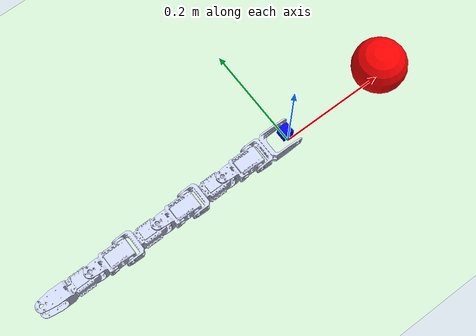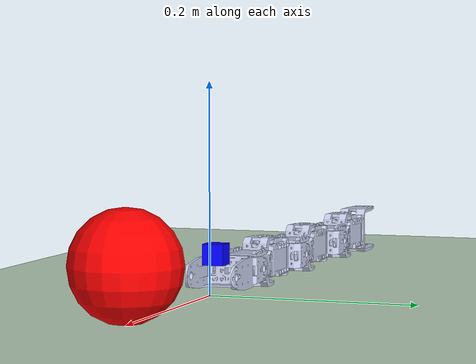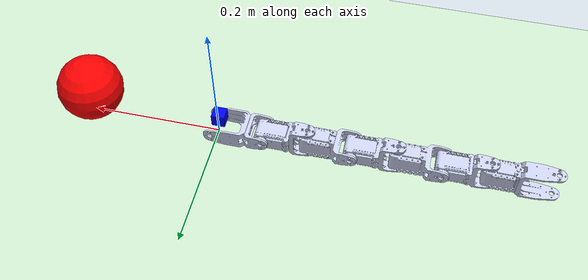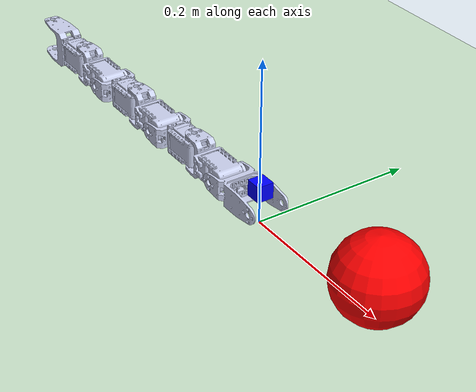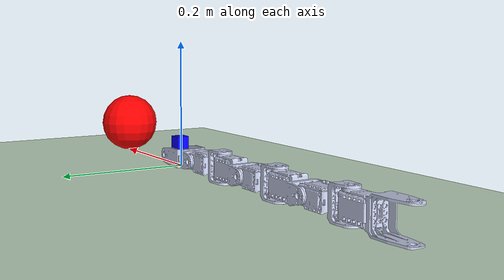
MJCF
<mujoco model="6Modules-Snake">
    <compiler angle="degree" coordinate="local" inertiafromgeom="true"/>
    <option integrator="Euler" timestep="0.0125">
        <flag energy="enable" clampctrl="enable"/>
    </option>
    <size nconmax="1000"/>

    <!--  ================= old 6Modules-Snake.xml ================= /-->

    <!--  ================= defaults ================= /-->
    <default>
        <!-- for power effizient experiment-->
        <geom conaffinity="0" condim="3" friction="1 0.05 0.00001" margin="0.01" density="600" />
        <joint armature='0.001' damping="0" frictionloss="0.001" />
        <!-- armature='1' damping="1" -->

        <position ctrllimited="true" ctrlrange="-1.5 1.5" forcelimited="true" forcerange="-10.0 10.0" kp="7" gear="1"/>

    </default>

    <asset>
        <mesh name="Tail" file="Tail.STL" />
        <mesh name="Module_1" file="Module_1.STL" />
        <mesh name="Module_2" file="Module_2.STL" />
        <mesh name="Module_3" file="Module_3.STL" />
        <mesh name="Module_4" file="Module_4.STL" />
        <mesh name="Module_5" file="Module_5.STL" />
        <mesh name="Head" file="Head.STL" />

        <!-- My Textures -->
        <!--  ================= Target Mesh ================= /-->
        <texture builtin="gradient" height="100" rgb1="1 1 1" rgb2="0 0 0" type="skybox" width="100"/>
        <texture builtin="flat" height="1278" mark="cross" markrgb="1 1 1" name="texgeom" random="0.01"
                 rgb1="0.8 0.6 0.4" rgb2="0.8 0.6 0.4" type="cube" width="127"/>
        <texture builtin="checker" height="100" name="texplane" rgb1="0 0 0" rgb2="0.8 0.8 0.8" type="2d" width="100"/>
        <material name="MatPlane" reflectance="0.5" shininess="1" specular="1" texrepeat="80 80" texture="texplane"/>
        <!-- 80 80 is one le -->
        <material name="geom" texture="texgeom" texuniform="true"/>

        <material name="MatTarget" rgba="1 0 0 1" reflectance="0.05" shininess="0.1" specular="0.1"/>
    </asset>

    <!-- Add manually-->
    <visual>
        <map znear="0.0625"  />
        <quality shadowsize="4096"/>

    </visual>

    <worldbody>
        <light cutoff="100" diffuse="1 1 1" dir="-0 0 -1.3" directional="true" exponent="1" pos="0 0 1.3"
               specular=".1 .1 .1"/>
        <geom name="floor" size="80 80 10" material="MatPlane" conaffinity="1" condim="3" pos="0 0 -0.025" rgba="0.8 0.9 0.8 0.71" type="plane"/>

        <!--  ================= Sun ================= /-->

        <!--  ================= Target ================= /-->
        <body name="target_ball" pos="0.2 0.0 0.05">
            <joint axis="1 0 0" name="target_slider_x" type="slide"/>
            <joint axis="0 1 0" name="target_slider_y" type="slide"/>
            <geom name="target_ball_geom" type="sphere" pos="0 0 0" size="0.05" material="MatTarget"/>
            <camera name="track_ball" mode="trackcom" pos="0 -4 6" euler="30 0 0"/>
            <camera name="track_ball2" mode="targetbodycom" pos="0 0 1" zaxis="0 0 90" />
        </body>

        <!--  ================= Add manually ================= /-->
        <body name="Snake-bodys" pos="-0.45 -0.01  0">

        <!--  ================= Add manually ================= /-->

            <!--  ====== copy from "6Modules-Feb17-v2-edited.xml" ====== -->
            <geom type="mesh" rgba="0.79216 0.81961 0.93333 1" mesh="Tail" />
            <body name="Module_1" pos="0.0398 0.0145 0.043">
                <inertial pos="0.15843 0.00036206 -0.023661" quat="0.268962 0.65397 0.269933 0.653543" mass="0.34605" diaginertia="0.00569944 0.00569937 7.43933e-05" />
                <joint name="Joint_1" pos="0 0 0" axis="0 0 1" limited="true" range="-90 90" damping="5" frictionloss="20" />
                <geom type="mesh" rgba="0.79216 0.81961 0.93333 1" mesh="Module_1" />
                <body name="Module_2" pos="0.0675 0 -0.024">
                    <inertial pos="0.090932 0.00036206 0.00033889" quat="0.268962 0.65397 0.269933 0.653543" mass="0.34605" diaginertia="0.00569944 0.00569937 7.43933e-05" />
                    <joint name="Joint_2" pos="0 0 0" axis="0 -1 0" limited="true" range="-9 9" damping="5" frictionloss="20" />
                    <geom type="mesh" rgba="0.79216 0.81961 0.93333 1" mesh="Module_2" />
                    <body name="Module_3" pos="0.0675 0 0">
                        <inertial pos="0.023432 0.00036206 0.00033889" quat="0.268962 0.65397 0.269933 0.653543" mass="0.34605" diaginertia="0.00569944 0.00569937 7.43933e-05" />
                        <joint name="Joint_3" pos="0 0 0" axis="0 0 1" limited="true" range="-90 90" damping="5" frictionloss="20" />
                        <geom type="mesh" rgba="0.79216 0.81961 0.93333 1" mesh="Module_3" />
                        <body name="Module_4" pos="0.0675 0 0">
                            <inertial pos="-0.044068 0.00036206 0.00033889" quat="0.268962 0.65397 0.269933 0.653543" mass="0.34605" diaginertia="0.00569944 0.00569937 7.43933e-05" />
                            <joint name="Joint_4" pos="0 0 0" axis="0 -1 0" limited="true" range="-9 9" damping="5" frictionloss="20" />
                            <geom type="mesh" rgba="0.79216 0.81961 0.93333 1" mesh="Module_4" />
                            <body name="Module_5" pos="0.0675 0 0">
                                <inertial pos="-0.11157 0.00036206 0.00033889" quat="0.268962 0.65397 0.269933 0.653543" mass="0.34605" diaginertia="0.00569944 0.00569937 7.43933e-05" />
                                <joint name="Joint_5" pos="0 0 0" axis="0 0 1" limited="true" range="-90 90" damping="5" frictionloss="20" />
                                <geom type="mesh" rgba="0.79216 0.81961 0.93333 1" mesh="Module_5" />
                                <body name="Head" pos="0.0675 0 0">
                                    <inertial pos="-0.17907 0.00036206 0.00033889" quat="0.268962 0.65397 0.269933 0.653543" mass="0.34605" diaginertia="0.00569944 0.00569937 7.43933e-05" />
                                    <joint name="Joint_Head" pos="0 0 0" axis="0 1 0" limited="true" range="-9 9" damping="5" frictionloss="20" />
                                    <geom type="mesh" rgba="0.79216 0.81961 0.93333 1" mesh="Head" />

                                    <!--  ================= Add manually ================= /-->
                                    <body name="front" pos="0.0675 0 0">
                                        <geom name="front_head" pos="0 0 .02" type="box" size=".01 .01 .01" rgba="1 0 0 0.6"/>
                                        <camera name="cam_head" pos="0 0 .02" fovy="90" euler="90 -90 0"/>
                                        <site name="site_head" pos="0 0 .02" type="box"  size=".01 .01 .01" rgba="0 0 1 0.9"/>

                                    </body>
                                </body>
                            </body>
                        </body>
                    </body>
                </body>
            </body>

            <joint pos=".01 0 0" axis="1 0 0" name="slider_x" type="slide"/>
            <joint pos=".01 0 0" axis="0 1 0" name="slider_y" type="slide"/>
            <joint pos=".01 0 0" axis="0 0 1" name="slider_z" type="slide"/>

            <joint pos=".01 0 0" axis="1 0 0" name="hinge_x" type="hinge"/>
            <joint pos=".01 0 0" axis="0 1 0" name="hinge_y" type="hinge"/>
            <joint pos=".01 0 0" axis="0 0 1" name="hinge_z" type="hinge"/>
            <!--  ================= Add manually ================= /-->
    </body>

    </worldbody>

    <actuator >

        <position name="actuator_joint01" joint="Joint_1"/>
        <position name="actuator_joint02" joint="Joint_2"/>
        <position name="actuator_joint03" joint="Joint_3"/>
        <position name="actuator_joint04" joint="Joint_4"/>
        <position name="actuator_joint05" joint="Joint_5"/>
        <position name="actuator_joint06" joint="Joint_Head"/>

    </actuator>
    <sensor>

        <actuatorfrc name="sensor_actuatorfrc_joint01" actuator="actuator_joint01" />
        <actuatorfrc name="sensor_actuatorfrc_joint02" actuator="actuator_joint02" />
        <actuatorfrc name="sensor_actuatorfrc_joint03" actuator="actuator_joint03" />
        <actuatorfrc name="sensor_actuatorfrc_joint04" actuator="actuator_joint04" />
        <actuatorfrc name="sensor_actuatorfrc_joint05" actuator="actuator_joint05" />
        <actuatorfrc name="sensor_actuatorfrc_joint06" actuator="actuator_joint06" />

        <velocimeter name="sensor_velocimeter" site="site_head"/>
        <accelerometer name="sensor_accelerometer" site="site_head"/>

    </sensor>
</mujoco>
